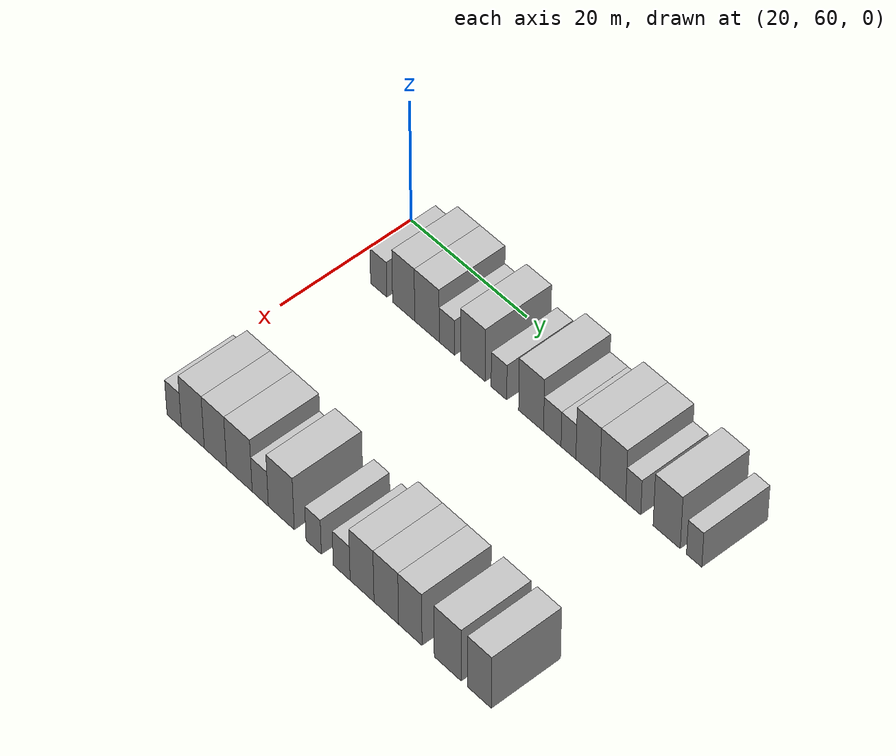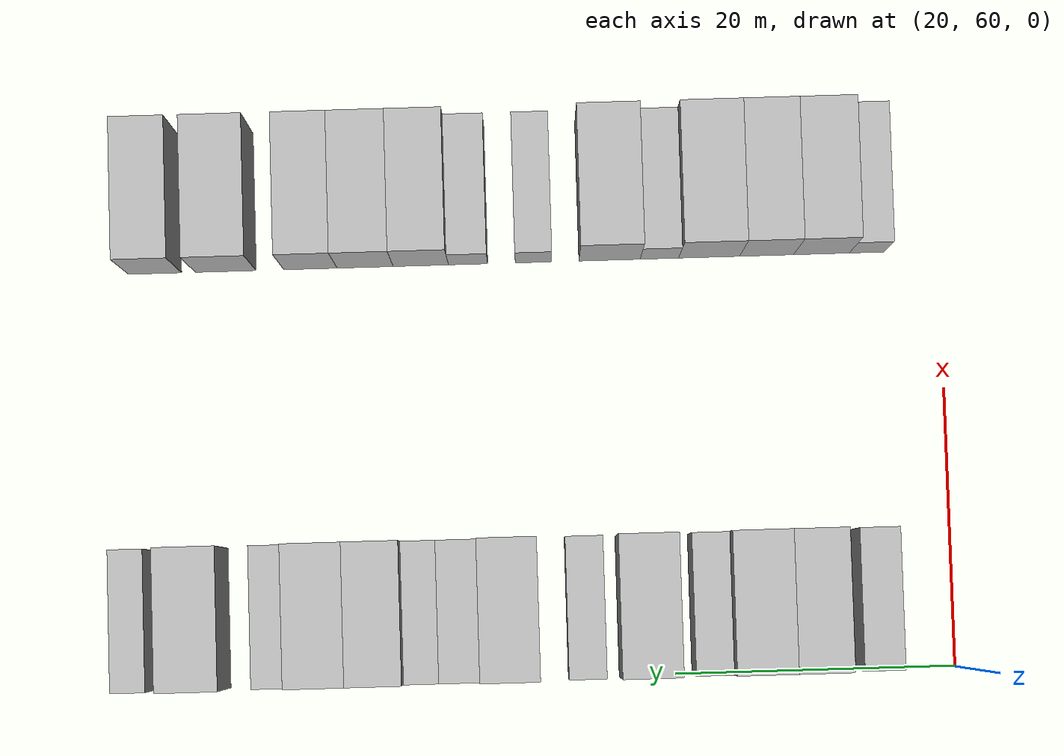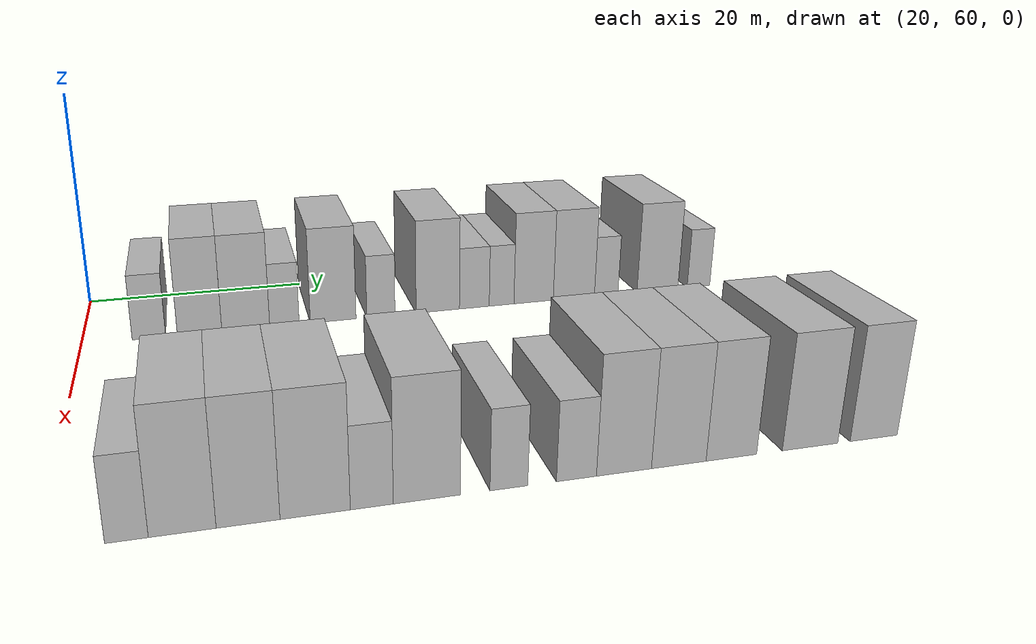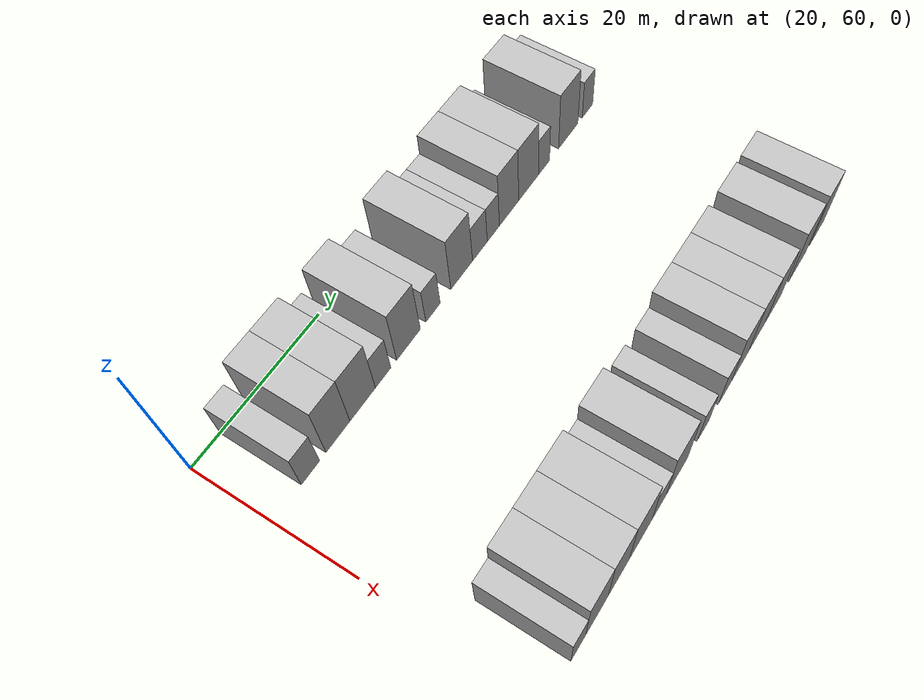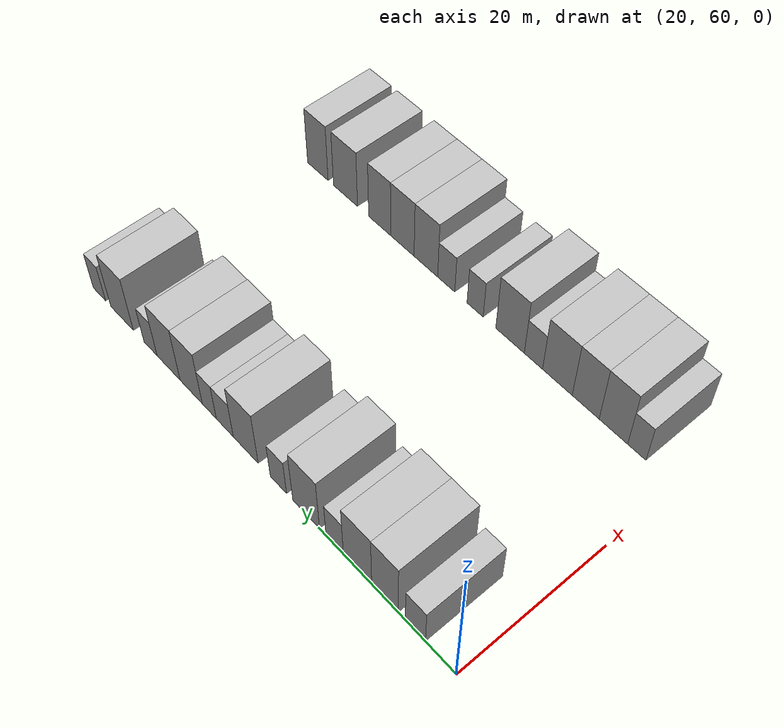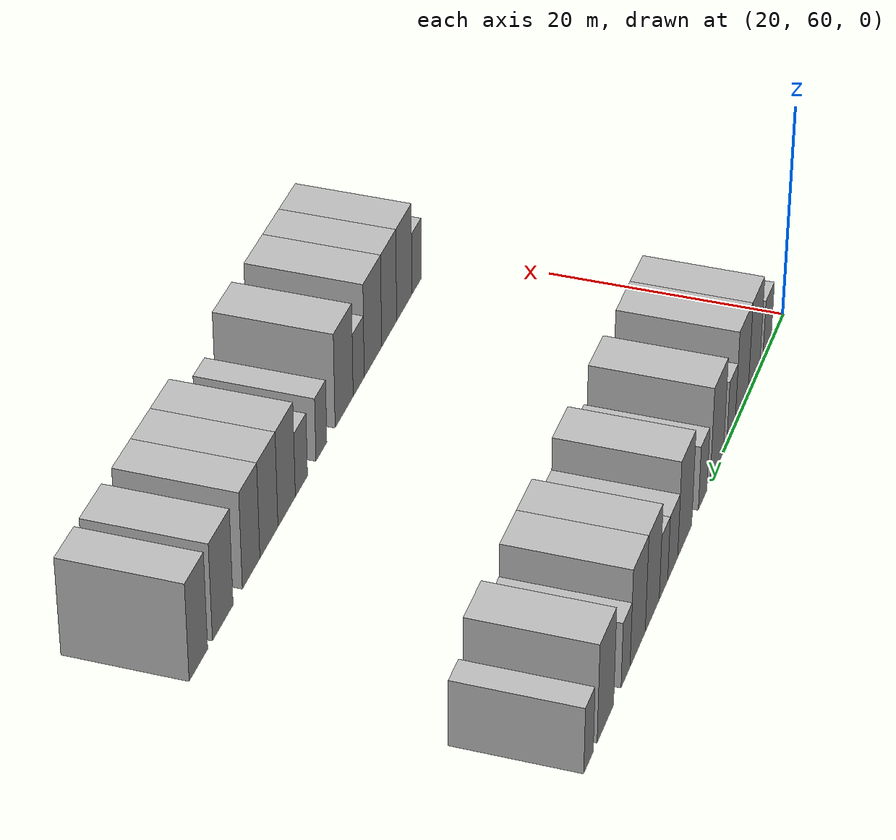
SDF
<sdf version="1.6">
 <world name="default">
  <model name="building_66">
   <static>1</static>
   <pose>25.0000 65.7047 0 0.000000 0.000000 0.000000</pose>
   <link name="link">
    <pose>0 0 3.00 0 0 0</pose>
    <collision name="collision"><geometry><box><size>10.0000 2.8471 6.0000</size></box></geometry></collision>
    <visual name="visual">
     <cast_shadows>0</cast_shadows>
     <geometry><box><size>10.0000 2.8471 6.0000</size></box></geometry>
     <material>
      <script>
       <uri>model://HANNAS_wall/materials/scripts</uri>
       <uri>model://HANNAS_wall/materials/textures</uri>
       <name>vrc/HANNAS_wall</name>
      </script>
     </material>
    </visual>
   </link>
  </model>
  <model name="building_67">
   <static>1</static>
   <pose>25.0000 70.0559 0 0.000000 0.000000 0.000000</pose>
   <link name="link">
    <pose>0 0 4.50 0 0 0</pose>
    <collision name="collision"><geometry><box><size>10.0000 3.8553 9.0000</size></box></geometry></collision>
    <visual name="visual">
     <cast_shadows>0</cast_shadows>
     <geometry><box><size>10.0000 3.8553 9.0000</size></box></geometry>
     <material>
      <script>
       <uri>model://HANNAS_wall/materials/scripts</uri>
       <uri>model://HANNAS_wall/materials/textures</uri>
       <name>vrc/HANNAS_wall</name>
      </script>
     </material>
    </visual>
   </link>
  </model>
  <model name="building_68">
   <static>1</static>
   <pose>25.0000 74.1039 0 0.000000 0.000000 0.000000</pose>
   <link name="link">
    <pose>0 0 4.50 0 0 0</pose>
    <collision name="collision"><geometry><box><size>10.0000 4.2406 9.0000</size></box></geometry></collision>
    <visual name="visual">
     <cast_shadows>0</cast_shadows>
     <geometry><box><size>10.0000 4.2406 9.0000</size></box></geometry>
     <material>
      <script>
       <uri>model://HANNAS_wall/materials/scripts</uri>
       <uri>model://HANNAS_wall/materials/textures</uri>
       <name>vrc/HANNAS_wall</name>
      </script>
     </material>
    </visual>
   </link>
  </model>
  <model name="building_69">
   <static>1</static>
   <pose>25.0000 77.5489 0 0.000000 0.000000 0.000000</pose>
   <link name="link">
    <pose>0 0 3.00 0 0 0</pose>
    <collision name="collision"><geometry><box><size>10.0000 2.6495 6.0000</size></box></geometry></collision>
    <visual name="visual">
     <cast_shadows>0</cast_shadows>
     <geometry><box><size>10.0000 2.6495 6.0000</size></box></geometry>
     <material>
      <script>
       <uri>model://HANNAS_wall/materials/scripts</uri>
       <uri>model://HANNAS_wall/materials/textures</uri>
       <name>vrc/HANNAS_wall</name>
      </script>
     </material>
    </visual>
   </link>
  </model>
  <model name="building_70">
   <static>1</static>
   <pose>25.0000 81.9790 0 0.000000 0.000000 0.000000</pose>
   <link name="link">
    <pose>0 0 4.50 0 0 0</pose>
    <collision name="collision"><geometry><box><size>10.0000 4.2107 9.0000</size></box></geometry></collision>
    <visual name="visual">
     <cast_shadows>0</cast_shadows>
     <geometry><box><size>10.0000 4.2107 9.0000</size></box></geometry>
     <material>
      <script>
       <uri>model://HANNAS_wall/materials/scripts</uri>
       <uri>model://HANNAS_wall/materials/textures</uri>
       <name>vrc/HANNAS_wall</name>
      </script>
     </material>
    </visual>
   </link>
  </model>
  <model name="building_71">
   <static>1</static>
   <pose>25.0000 86.4063 0 0.000000 0.000000 0.000000</pose>
   <link name="link">
    <pose>0 0 3.00 0 0 0</pose>
    <collision name="collision"><geometry><box><size>10.0000 2.6438 6.0000</size></box></geometry></collision>
    <visual name="visual">
     <cast_shadows>0</cast_shadows>
     <geometry><box><size>10.0000 2.6438 6.0000</size></box></geometry>
     <material>
      <script>
       <uri>model://HANNAS_wall/materials/scripts</uri>
       <uri>model://HANNAS_wall/materials/textures</uri>
       <name>vrc/HANNAS_wall</name>
      </script>
     </material>
    </visual>
   </link>
  </model>
  <model name="building_72">
   <static>1</static>
   <pose>25.0000 91.8164 0 0.000000 0.000000 0.000000</pose>
   <link name="link">
    <pose>0 0 4.50 0 0 0</pose>
    <collision name="collision"><geometry><box><size>10.0000 4.1764 9.0000</size></box></geometry></collision>
    <visual name="visual">
     <cast_shadows>0</cast_shadows>
     <geometry><box><size>10.0000 4.1764 9.0000</size></box></geometry>
     <material>
      <script>
       <uri>model://HANNAS_wall/materials/scripts</uri>
       <uri>model://HANNAS_wall/materials/textures</uri>
       <name>vrc/HANNAS_wall</name>
      </script>
     </material>
    </visual>
   </link>
  </model>
  <model name="building_73">
   <static>1</static>
   <pose>25.0000 95.3622 0 0.000000 0.000000 0.000000</pose>
   <link name="link">
    <pose>0 0 3.00 0 0 0</pose>
    <collision name="collision"><geometry><box><size>10.0000 2.9153 6.0000</size></box></geometry></collision>
    <visual name="visual">
     <cast_shadows>0</cast_shadows>
     <geometry><box><size>10.0000 2.9153 6.0000</size></box></geometry>
     <material>
      <script>
       <uri>model://HANNAS_wall/materials/scripts</uri>
       <uri>model://HANNAS_wall/materials/textures</uri>
       <name>vrc/HANNAS_wall</name>
      </script>
     </material>
    </visual>
   </link>
  </model>
  <model name="building_74">
   <static>1</static>
   <pose>25.0000 98.0449 0 0.000000 0.000000 0.000000</pose>
   <link name="link">
    <pose>0 0 3.00 0 0 0</pose>
    <collision name="collision"><geometry><box><size>10.0000 2.4500 6.0000</size></box></geometry></collision>
    <visual name="visual">
     <cast_shadows>0</cast_shadows>
     <geometry><box><size>10.0000 2.4500 6.0000</size></box></geometry>
     <material>
      <script>
       <uri>model://HANNAS_wall/materials/scripts</uri>
       <uri>model://HANNAS_wall/materials/textures</uri>
       <name>vrc/HANNAS_wall</name>
      </script>
     </material>
    </visual>
   </link>
  </model>
  <model name="building_75">
   <static>1</static>
   <pose>25.0000 101.2486 0 0.000000 0.000000 0.000000</pose>
   <link name="link">
    <pose>0 0 4.50 0 0 0</pose>
    <collision name="collision"><geometry><box><size>10.0000 3.9574 9.0000</size></box></geometry></collision>
    <visual name="visual">
     <cast_shadows>0</cast_shadows>
     <geometry><box><size>10.0000 3.9574 9.0000</size></box></geometry>
     <material>
      <script>
       <uri>model://HANNAS_wall/materials/scripts</uri>
       <uri>model://HANNAS_wall/materials/textures</uri>
       <name>vrc/HANNAS_wall</name>
      </script>
     </material>
    </visual>
   </link>
  </model>
  <model name="building_76">
   <static>1</static>
   <pose>25.0000 105.3379 0 0.000000 0.000000 0.000000</pose>
   <link name="link">
    <pose>0 0 4.50 0 0 0</pose>
    <collision name="collision"><geometry><box><size>10.0000 4.2212 9.0000</size></box></geometry></collision>
    <visual name="visual">
     <cast_shadows>0</cast_shadows>
     <geometry><box><size>10.0000 4.2212 9.0000</size></box></geometry>
     <material>
      <script>
       <uri>model://HANNAS_wall/materials/scripts</uri>
       <uri>model://HANNAS_wall/materials/textures</uri>
       <name>vrc/HANNAS_wall</name>
      </script>
     </material>
    </visual>
   </link>
  </model>
  <model name="building_77">
   <static>1</static>
   <pose>25.0000 108.6724 0 0.000000 0.000000 0.000000</pose>
   <link name="link">
    <pose>0 0 3.00 0 0 0</pose>
    <collision name="collision"><geometry><box><size>10.0000 2.4478 6.0000</size></box></geometry></collision>
    <visual name="visual">
     <cast_shadows>0</cast_shadows>
     <geometry><box><size>10.0000 2.4478 6.0000</size></box></geometry>
     <material>
      <script>
       <uri>model://HANNAS_wall/materials/scripts</uri>
       <uri>model://HANNAS_wall/materials/textures</uri>
       <name>vrc/HANNAS_wall</name>
      </script>
     </material>
    </visual>
   </link>
  </model>
  <model name="building_78">
   <static>1</static>
   <pose>25.0000 114.0790 0 0.000000 0.000000 0.000000</pose>
   <link name="link">
    <pose>0 0 4.50 0 0 0</pose>
    <collision name="collision"><geometry><box><size>10.0000 4.3654 9.0000</size></box></geometry></collision>
    <visual name="visual">
     <cast_shadows>0</cast_shadows>
     <geometry><box><size>10.0000 4.3654 9.0000</size></box></geometry>
     <material>
      <script>
       <uri>model://HANNAS_wall/materials/scripts</uri>
       <uri>model://HANNAS_wall/materials/textures</uri>
       <name>vrc/HANNAS_wall</name>
      </script>
     </material>
    </visual>
   </link>
  </model>
  <model name="building_79">
   <static>1</static>
   <pose>25.0000 118.4874 0 0.000000 0.000000 0.000000</pose>
   <link name="link">
    <pose>0 0 3.00 0 0 0</pose>
    <collision name="collision"><geometry><box><size>10.0000 2.4514 6.0000</size></box></geometry></collision>
    <visual name="visual">
     <cast_shadows>0</cast_shadows>
     <geometry><box><size>10.0000 2.4514 6.0000</size></box></geometry>
     <material>
      <script>
       <uri>model://HANNAS_wall/materials/scripts</uri>
       <uri>model://HANNAS_wall/materials/textures</uri>
       <name>vrc/HANNAS_wall</name>
      </script>
     </material>
    </visual>
   </link>
  </model>
  <model name="building_173">
   <static>1</static>
   <pose>55.0000 65.1963 0 0.000000 0.000000 0.000000</pose>
   <link name="link">
    <pose>0 0 3.00 0 0 0</pose>
    <collision name="collision"><geometry><box><size>10.0000 2.5425 6.0000</size></box></geometry></collision>
    <visual name="visual">
     <cast_shadows>0</cast_shadows>
     <geometry><box><size>10.0000 2.5425 6.0000</size></box></geometry>
     <material>
      <script>
       <uri>model://HANNAS_wall/materials/scripts</uri>
       <uri>model://HANNAS_wall/materials/textures</uri>
       <name>vrc/HANNAS_wall</name>
      </script>
     </material>
    </visual>
   </link>
  </model>
  <model name="building_174">
   <static>1</static>
   <pose>55.0000 68.4857 0 0.000000 0.000000 0.000000</pose>
   <link name="link">
    <pose>0 0 4.50 0 0 0</pose>
    <collision name="collision"><geometry><box><size>10.0000 4.0363 9.0000</size></box></geometry></collision>
    <visual name="visual">
     <cast_shadows>0</cast_shadows>
     <geometry><box><size>10.0000 4.0363 9.0000</size></box></geometry>
     <material>
      <script>
       <uri>model://HANNAS_wall/materials/scripts</uri>
       <uri>model://HANNAS_wall/materials/textures</uri>
       <name>vrc/HANNAS_wall</name>
      </script>
     </material>
    </visual>
   </link>
  </model>
  <model name="building_175">
   <static>1</static>
   <pose>55.0000 72.4572 0 0.000000 0.000000 0.000000</pose>
   <link name="link">
    <pose>0 0 4.50 0 0 0</pose>
    <collision name="collision"><geometry><box><size>10.0000 3.9067 9.0000</size></box></geometry></collision>
    <visual name="visual">
     <cast_shadows>0</cast_shadows>
     <geometry><box><size>10.0000 3.9067 9.0000</size></box></geometry>
     <material>
      <script>
       <uri>model://HANNAS_wall/materials/scripts</uri>
       <uri>model://HANNAS_wall/materials/textures</uri>
       <name>vrc/HANNAS_wall</name>
      </script>
     </material>
    </visual>
   </link>
  </model>
  <model name="building_176">
   <static>1</static>
   <pose>55.0000 76.6253 0 0.000000 0.000000 0.000000</pose>
   <link name="link">
    <pose>0 0 4.50 0 0 0</pose>
    <collision name="collision"><geometry><box><size>10.0000 4.4295 9.0000</size></box></geometry></collision>
    <visual name="visual">
     <cast_shadows>0</cast_shadows>
     <geometry><box><size>10.0000 4.4295 9.0000</size></box></geometry>
     <material>
      <script>
       <uri>model://HANNAS_wall/materials/scripts</uri>
       <uri>model://HANNAS_wall/materials/textures</uri>
       <name>vrc/HANNAS_wall</name>
      </script>
     </material>
    </visual>
   </link>
  </model>
  <model name="building_177">
   <static>1</static>
   <pose>55.0000 80.2277 0 0.000000 0.000000 0.000000</pose>
   <link name="link">
    <pose>0 0 3.00 0 0 0</pose>
    <collision name="collision"><geometry><box><size>10.0000 2.7755 6.0000</size></box></geometry></collision>
    <visual name="visual">
     <cast_shadows>0</cast_shadows>
     <geometry><box><size>10.0000 2.7755 6.0000</size></box></geometry>
     <material>
      <script>
       <uri>model://HANNAS_wall/materials/scripts</uri>
       <uri>model://HANNAS_wall/materials/textures</uri>
       <name>vrc/HANNAS_wall</name>
      </script>
     </material>
    </visual>
   </link>
  </model>
  <model name="building_178">
   <static>1</static>
   <pose>55.0000 83.8352 0 0.000000 0.000000 0.000000</pose>
   <link name="link">
    <pose>0 0 4.50 0 0 0</pose>
    <collision name="collision"><geometry><box><size>10.0000 4.4395 9.0000</size></box></geometry></collision>
    <visual name="visual">
     <cast_shadows>0</cast_shadows>
     <geometry><box><size>10.0000 4.4395 9.0000</size></box></geometry>
     <material>
      <script>
       <uri>model://HANNAS_wall/materials/scripts</uri>
       <uri>model://HANNAS_wall/materials/textures</uri>
       <name>vrc/HANNAS_wall</name>
      </script>
     </material>
    </visual>
   </link>
  </model>
  <model name="building_179">
   <static>1</static>
   <pose>55.0000 89.3561 0 0.000000 0.000000 0.000000</pose>
   <link name="link">
    <pose>0 0 3.00 0 0 0</pose>
    <collision name="collision"><geometry><box><size>10.0000 2.6024 6.0000</size></box></geometry></collision>
    <visual name="visual">
     <cast_shadows>0</cast_shadows>
     <geometry><box><size>10.0000 2.6024 6.0000</size></box></geometry>
     <material>
      <script>
       <uri>model://HANNAS_wall/materials/scripts</uri>
       <uri>model://HANNAS_wall/materials/textures</uri>
       <name>vrc/HANNAS_wall</name>
      </script>
     </material>
    </visual>
   </link>
  </model>
  <model name="building_180">
   <static>1</static>
   <pose>55.0000 94.0768 0 0.000000 0.000000 0.000000</pose>
   <link name="link">
    <pose>0 0 3.00 0 0 0</pose>
    <collision name="collision"><geometry><box><size>10.0000 2.8389 6.0000</size></box></geometry></collision>
    <visual name="visual">
     <cast_shadows>0</cast_shadows>
     <geometry><box><size>10.0000 2.8389 6.0000</size></box></geometry>
     <material>
      <script>
       <uri>model://HANNAS_wall/materials/scripts</uri>
       <uri>model://HANNAS_wall/materials/textures</uri>
       <name>vrc/HANNAS_wall</name>
      </script>
     </material>
    </visual>
   </link>
  </model>
  <model name="building_181">
   <static>1</static>
   <pose>55.0000 97.4906 0 0.000000 0.000000 0.000000</pose>
   <link name="link">
    <pose>0 0 4.50 0 0 0</pose>
    <collision name="collision"><geometry><box><size>10.0000 3.9888 9.0000</size></box></geometry></collision>
    <visual name="visual">
     <cast_shadows>0</cast_shadows>
     <geometry><box><size>10.0000 3.9888 9.0000</size></box></geometry>
     <material>
      <script>
       <uri>model://HANNAS_wall/materials/scripts</uri>
       <uri>model://HANNAS_wall/materials/textures</uri>
       <name>vrc/HANNAS_wall</name>
      </script>
     </material>
    </visual>
   </link>
  </model>
  <model name="building_182">
   <static>1</static>
   <pose>55.0000 101.5181 0 0.000000 0.000000 0.000000</pose>
   <link name="link">
    <pose>0 0 4.50 0 0 0</pose>
    <collision name="collision"><geometry><box><size>10.0000 4.0663 9.0000</size></box></geometry></collision>
    <visual name="visual">
     <cast_shadows>0</cast_shadows>
     <geometry><box><size>10.0000 4.0663 9.0000</size></box></geometry>
     <material>
      <script>
       <uri>model://HANNAS_wall/materials/scripts</uri>
       <uri>model://HANNAS_wall/materials/textures</uri>
       <name>vrc/HANNAS_wall</name>
      </script>
     </material>
    </visual>
   </link>
  </model>
  <model name="building_183">
   <static>1</static>
   <pose>55.0000 105.4807 0 0.000000 0.000000 0.000000</pose>
   <link name="link">
    <pose>0 0 4.50 0 0 0</pose>
    <collision name="collision"><geometry><box><size>10.0000 3.8589 9.0000</size></box></geometry></collision>
    <visual name="visual">
     <cast_shadows>0</cast_shadows>
     <geometry><box><size>10.0000 3.8589 9.0000</size></box></geometry>
     <material>
      <script>
       <uri>model://HANNAS_wall/materials/scripts</uri>
       <uri>model://HANNAS_wall/materials/textures</uri>
       <name>vrc/HANNAS_wall</name>
      </script>
     </material>
    </visual>
   </link>
  </model>
  <model name="building_184">
   <static>1</static>
   <pose>55.0000 111.6093 0 0.000000 0.000000 0.000000</pose>
   <link name="link">
    <pose>0 0 4.50 0 0 0</pose>
    <collision name="collision"><geometry><box><size>10.0000 4.3984 9.0000</size></box></geometry></collision>
    <visual name="visual">
     <cast_shadows>0</cast_shadows>
     <geometry><box><size>10.0000 4.3984 9.0000</size></box></geometry>
     <material>
      <script>
       <uri>model://HANNAS_wall/materials/scripts</uri>
       <uri>model://HANNAS_wall/materials/textures</uri>
       <name>vrc/HANNAS_wall</name>
      </script>
     </material>
    </visual>
   </link>
  </model>
  <model name="building_185">
   <static>1</static>
   <pose>55.0000 116.7326 0 0.000000 0.000000 0.000000</pose>
   <link name="link">
    <pose>0 0 4.50 0 0 0</pose>
    <collision name="collision"><geometry><box><size>10.0000 3.8481 9.0000</size></box></geometry></collision>
    <visual name="visual">
     <cast_shadows>0</cast_shadows>
     <geometry><box><size>10.0000 3.8481 9.0000</size></box></geometry>
     <material>
      <script>
       <uri>model://HANNAS_wall/materials/scripts</uri>
       <uri>model://HANNAS_wall/materials/textures</uri>
       <name>vrc/HANNAS_wall</name>
      </script>
     </material>
    </visual>
   </link>
  </model>
 </world>
</sdf>
